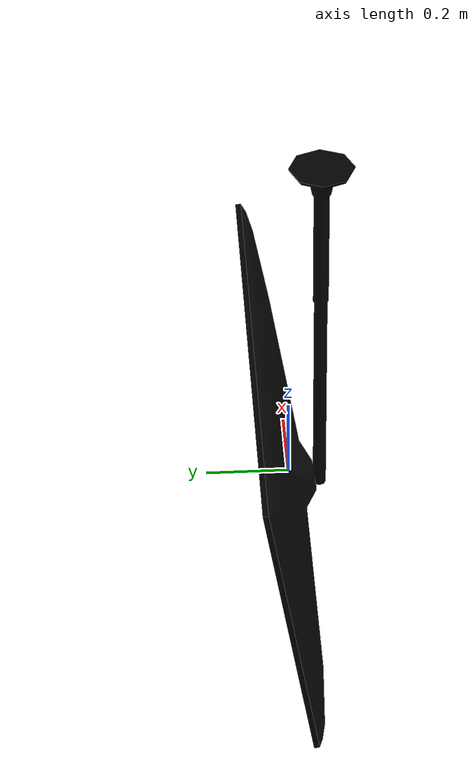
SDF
<?xml version='1.0'?>
<sdf version='1.5'>
    <model name="LG_screen">
        <pose>0 0 0 0 0 0</pose>
        <static>true</static>
        <link name='model_body'>
            <visual name="visual">
                <geometry>
                    <mesh>
                        <uri>model://robert_gazebo/meshes/screen_visual.dae</uri>
                        <scale>1 1 1</scale>
                    </mesh>
                </geometry>
            </visual>

            <collision name="collision">
                <geometry>
                    <mesh>
                        <uri>model://robert_gazebo/meshes/screen_collision.dae</uri>
                        <scale>1 1 1</scale>
                    </mesh>
                </geometry>
            </collision>

            <inertial>
                <pose> 0 0 0 0 0 0</pose>
                <inertia>
                    <ixx>0.35</ixx>
                    <ixy>0</ixy>
                    <ixz>0</ixz>
                    <iyy>1.3</iyy>
                    <iyz>0</iyz>
                    <izz>0.98</izz>
                </inertia>
                <mass>8.0</mass>
            </inertial>
        </link>
    </model>
</sdf>
